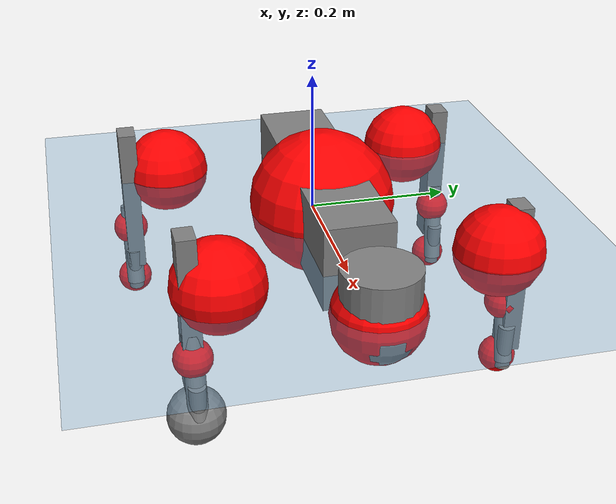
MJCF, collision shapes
<mujoco model="go2">
  <compiler angle="radian" assetdir="assets" balanceinertia="true" inertiafromgeom="false"/>

  <option timestep="0.005" density="1.2" viscosity="2e-05"/>

  <size nkey="1"/>

  <visual>
    <quality shadowsize="8192"/>
    <map shadowclip="0.5"/>
  </visual>

  <default>
    <default class="/">
      <geom contype="0" conaffinity="0" group="1" solref="-1000 -80"/>
      <site size="0.01 0.005 0.005" group="5"/>
      <general forcelimited="true" biastype="affine" gainprm="20" biasprm="0 -20 -0.5"/>
      <default class="go2">
        <joint armature="0.01" damping="0.01" frictionloss="0.2"/>
        <geom condim="1" margin="0.001"/>
        <default class="visual">
          <geom type="mesh" group="2"/>
        </default>
        <default class="collision">
          <geom group="3"/>
          <default class="foot">
            <geom size="0.022 0 0" condim="6" priority="1" friction="0.8 0.02 0.01" solimp="0.015 1 0.022"/>
          </default>
        </default>
        <default class="reward_collision_sphere">
          <geom group="5" rgba="1 0 0 1"/>
        </default>
      </default>
    </default>
  </default>

  <asset>
    <texture type="skybox" colorspace="auto" name="//unnamed_texture_0" builtin="gradient" rgb1="0.95 0.95 0.95" rgb2="0.95 0.95 0.95" width="100" height="600"/>
    <texture type="2d" colorspace="auto" name="texplane" builtin="checker" rgb1="0.345 0.575 0.748" rgb2="0.345 0.575 0.748" markrgb="1 1 1" width="512" height="512"/>
    <material name="MatPlane" class="/" texture="texplane" texuniform="true" texrepeat="2 2" specular="0.9"/>
    <material name="metal" class="/" rgba="0.9 0.95 0.95 1"/>
    <material name="black" class="/" rgba="0 0 0 1"/>
    <material name="white" class="/"/>
    <material name="gray" class="/" rgba="0.671705 0.692426 0.77427 1"/>
    <mesh name="base_0" class="/" file="base_0.obj"/>
    <mesh name="base_1" class="/" file="base_1.obj"/>
    <mesh name="base_2" class="/" file="base_2.obj"/>
    <mesh name="base_3" class="/" file="base_3.obj"/>
    <mesh name="base_4" class="/" file="base_4.obj"/>
    <mesh name="hip_0" class="/" file="hip_0.obj"/>
    <mesh name="hip_1" class="/" file="hip_1.obj"/>
    <mesh name="thigh_0" class="/" file="thigh_0.obj"/>
    <mesh name="thigh_1" class="/" file="thigh_1.obj"/>
    <mesh name="thigh_mirror_0" class="/" file="thigh_mirror_0.obj"/>
    <mesh name="thigh_mirror_1" class="/" file="thigh_mirror_1.obj"/>
    <mesh name="calf_0" class="/" file="calf_0.obj"/>
    <mesh name="calf_1" class="/" file="calf_1.obj"/>
    <mesh name="calf_mirror_0" class="/" file="calf_mirror_0.obj"/>
    <mesh name="calf_mirror_1" class="/" file="calf_mirror_1.obj"/>
    <mesh name="foot" class="/" file="foot.obj"/>
  </asset>

  <worldbody>
    <geom name="floor" class="/" size="100 100 0.125" type="plane" group="0" material="MatPlane"/>
    <light name="toplight_shadow" class="/" pos="0 0 5" dir="0.0990148 0.0990148 -0.990148" type="directional" ambient="0.04 0.04 0.04" diffuse="0.55 0.55 0.55" specular="0.12 0.12 0.12"/>
    <light name="toplight_fill" class="/" pos="0 0 5" dir="0.0990148 0.0990148 -0.990148" type="directional" castshadow="false" ambient="0.04 0.04 0.04" diffuse="0.3 0.3 0.3" specular="0.08 0.08 0.08"/>
    <body name="trunk" childclass="go2" pos="0.00346073 0.0135874 0.00905894" quat="0.999977 -0.000488138 0.00517592 0.00442103">
      <inertial pos="0.0337135 0.0185468 -0.0162899" quat="-0.0566425 0.717521 0.0201372 0.693938" mass="8.17035" diaginertia="0.177719 1.82607 0.000358307"/>
      <joint name="//unnamed_joint_0" type="free" armature="0" damping="0" frictionloss="0"/>
      <geom name="//unnamed_geom_1" class="visual" material="black" mesh="base_0"/>
      <geom name="//unnamed_geom_2" class="visual" material="black" mesh="base_1"/>
      <geom name="//unnamed_geom_3" class="visual" material="black" mesh="base_2"/>
      <geom name="//unnamed_geom_4" class="visual" material="white" mesh="base_3"/>
      <geom name="//unnamed_geom_5" class="visual" material="gray" mesh="base_4"/>
      <geom name="trunk_1" class="collision" size="0.198779 0.049404 0.0602359" type="box"/>
      <geom name="trunk_2" class="collision" size="0.0528385 0.0475547" pos="0.290391 0 0.00430655" type="cylinder"/>
      <geom name="trunk_3" class="collision" size="0.0496682" pos="0.298542 0 -0.0258393"/>
      <geom name="//unnamed_geom_9" class="reward_collision_sphere" size="0.105677"/>
      <geom name="//unnamed_geom_10" class="reward_collision_sphere" size="0.0634062" pos="0.285296 0 -0.0193795"/>
      <site name="imu" pos="0.00224907 -0.0238037 -0.00547608" size="0.0105677"/>
      <camera name="track" pos="0 -3.44148 0" quat="0.707107 0.707107 0 0" mode="trackcom"/>
      <camera name="ego_camera" pos="0.317901 0 0.0193795" quat="-0.5 -0.5 0.5 0.5"/>
      <body name="FL_hip" pos="0.191658 0.0779504 -0.00529202" quat="0.999998 0.00209202 0.000595471 0.000319815">
        <inertial pos="-0.00621364 0.0191269 -0.00313654" quat="0.525134 0.543097 0.507931 0.413867" mass="0.689754" diaginertia="0.000933822 0.0092723 6.80485e-06"/>
        <joint name="FL_hip_joint" pos="0 0 0" axis="0.998869 0.00456687 -0.0473329" range="-0.809963 1.18447" armature="0.0139213" damping="0" frictionloss="0.243626"/>
        <geom name="//unnamed_geom_11" class="visual" material="metal" mesh="hip_0"/>
        <geom name="//unnamed_geom_12" class="visual" material="gray" mesh="hip_1"/>
        <geom name="//unnamed_geom_13" class="collision" size="0.0486114 0.0211354" pos="0 0.137659 0" quat="0.707107 0.707107 0 0" type="cylinder"/>
        <geom name="//unnamed_geom_14" class="reward_collision_sphere" size="0.0634062" pos="0 0.120452 0"/>
        <body name="FL_thigh" pos="-0.0156106 0.152461 -0.00864774" quat="0.999955 -0.00648893 -0.00424103 -0.0054807">
          <inertial pos="-0.000230658 -0.0573929 -0.00714404" quat="0.840152 0.127557 -0.0106813 0.527029" mass="1.11357" diaginertia="0.00759468 0.0652381 1.26976e-05"/>
          <joint name="FL_thigh_joint" pos="0 0 0" axis="-0.00447602 0.997564 0.0696085" range="-1.29478 3.8417" armature="0.000376821" damping="0" frictionloss="0.34047"/>
          <geom name="//unnamed_geom_15" class="visual" material="metal" mesh="thigh_0"/>
          <geom name="//unnamed_geom_16" class="visual" material="gray" mesh="thigh_1"/>
          <geom name="//unnamed_geom_17" class="collision" size="0.112546 0.0129454 0.0179651" pos="0 0 -0.0458648" quat="0.707107 0 0.707107 0" type="box"/>
          <body name="FL_calf" pos="-0.00743464 -0.00747809 -0.0886616" quat="0.999997 -0.00011596 -0.00221073 -0.00117277">
            <inertial pos="0.0231786 0.0120025 -0.0454812" quat="0.718793 -0.0453602 -0.00608432 0.693716" mass="0.292108" diaginertia="0.00186587 0.020074 9.80888e-07"/>
            <joint name="FL_calf_joint" pos="0 0 0" axis="-0.0210621 0.999777 0.00175415" range="-3.10461 -1.14328" armature="0.0175757" damping="0.093583" frictionloss="0.112945"/>
            <geom name="//unnamed_geom_18" class="visual" material="gray" mesh="calf_0"/>
            <geom name="//unnamed_geom_19" class="visual" material="black" mesh="calf_1"/>
            <geom name="FL_calf0" class="collision" size="0.0126812 0.0634062" pos="0.00815132 0 -0.0258393" quat="0.994493 0 -0.104807 0" type="cylinder"/>
            <geom name="//unnamed_geom_21" class="collision" size="0.0116245 0.034345" pos="0.0203783 0 -0.063737" quat="0.999688 0 0.0249974 0" type="cylinder"/>
            <geom name="//unnamed_geom_22" class="visual" pos="0 0 -0.0917296" quat="1 0 0 0" material="black" mesh="foot"/>
            <geom name="FL_foot" class="foot" size="0.0233816" pos="-0.00203783 0 -0.0917296"/>
            <geom name="//unnamed_geom_24" class="reward_collision_sphere" size="0.0264193"/>
            <geom name="//unnamed_geom_25" class="reward_collision_sphere" size="0.0264193" pos="-0.00203783 0 -0.0917296"/>
            <site name="FL_foot" class="foot" pos="-0.00203783 0 -0.0917296" size="0.0105677"/>
          </body>
        </body>
      </body>
      <body name="FR_hip" pos="0.215926 -0.0690279 0.0116454" quat="0.999993 0.003124 -0.000376943 0.00225708">
        <inertial pos="0.000912076 -0.0135161 0.0106955" quat="0.522627 0.557289 0.442061 0.46997" mass="0.859441" diaginertia="0.00109019 0.00898205 5.97295e-06"/>
        <joint name="FR_hip_joint" pos="0 0 0" axis="0.998127 -0.0465233 0.0397143" stiffness="0.09675" range="-1.15899 0.722069" armature="0.01576" damping="0" frictionloss="0.119698"/>
        <geom name="//unnamed_geom_26" class="visual" pos="0 1.12387e-08 4.82051e-07" quat="4.63268e-05 1 0 0" material="metal" mesh="hip_0"/>
        <geom name="//unnamed_geom_27" class="visual" pos="0 1.82193e-08 -1.1923e-06" quat="4.63268e-05 1 0 0" material="gray" mesh="hip_1"/>
        <geom name="//unnamed_geom_28" class="collision" size="0.0486114 0.0211354" pos="0 -0.137659 0" quat="0.707107 0.707107 0 0" type="cylinder"/>
        <geom name="//unnamed_geom_29" class="reward_collision_sphere" size="0.0634062" pos="0 -0.120452 0"/>
        <body name="FR_thigh" pos="0.0103707 -0.160451 0.0167077" quat="1 -3.33293e-05 -0.000341959 0.000259394">
          <inertial pos="-0.0153438 0.0516235 -0.0315737" quat="0.514311 -0.0226971 0.107216 0.850573" mass="1.24029" diaginertia="0.00783408 0.0907397 1.34131e-05"/>
          <joint name="FR_thigh_joint" pos="0 0 0" axis="-0.0173318 -0.99966 -0.0194618" range="-3.41108 1.37909" armature="0.0186778" damping="0" frictionloss="0.348516"/>
          <geom name="//unnamed_geom_30" class="visual" material="metal" mesh="thigh_mirror_0"/>
          <geom name="//unnamed_geom_31" class="visual" material="gray" mesh="thigh_mirror_1"/>
          <geom name="//unnamed_geom_32" class="collision" size="0.112546 0.0129454 0.0179651" pos="0 0 -0.0458648" quat="0.707107 0 0.707107 0" type="box"/>
          <body name="FR_calf" pos="0.00758521 1.42572e-05 -0.108646" quat="0.999993 -0.00120261 0.00328754 -0.00153068">
            <inertial pos="0.0194345 -0.0123492 -0.0658961" quat="0.668763 -0.00170624 0.0239686 0.743088" mass="0.21594" diaginertia="0.00140802 0.0138952 6.97308e-07"/>
            <joint name="FR_calf_joint" pos="0 0 0" axis="-0.0178085 -0.999623 0.0208986" range="0.649232 2.55336" armature="0.0137215" damping="0.102824" frictionloss="0.315313"/>
            <geom name="//unnamed_geom_33" class="visual" material="gray" mesh="calf_mirror_0"/>
            <geom name="//unnamed_geom_34" class="visual" material="black" mesh="calf_mirror_1"/>
            <geom name="FR_calf0" class="collision" size="0.013738 0.0634062" pos="0.0101891 0 -0.0258393" quat="0.995004 0 -0.0998334 0" type="cylinder"/>
            <geom name="//unnamed_geom_36" class="collision" size="0.0116245 0.034345" pos="0.0203783 0 -0.063737" quat="0.999688 0 0.0249974 0" type="cylinder"/>
            <geom name="//unnamed_geom_37" class="visual" pos="0 0 -0.0917296" quat="1 0 0 0" material="black" mesh="foot"/>
            <geom name="FR_foot" class="foot" size="0.0396952" pos="-0.00203783 0 -0.0917296"/>
            <geom name="//unnamed_geom_39" class="reward_collision_sphere" size="0.0264193"/>
            <geom name="//unnamed_geom_40" class="reward_collision_sphere" size="0.0264193" pos="-0.00203783 0 -0.0917296"/>
            <site name="FR_foot" class="foot" pos="-0.00203783 0 -0.0917296" size="0.0105677"/>
          </body>
        </body>
      </body>
      <body name="RL_hip" pos="-0.19752 0.0685277 -0.0146921" quat="0.999998 -0.000697156 0.00104957 -0.00166606">
        <inertial pos="-0.00182833 0.0109917 -0.0129023" quat="0.501536 0.474719 0.528179 0.494095" mass="1.11829" diaginertia="0.00119417 0.0115854 6.77583e-06"/>
        <joint name="RL_hip_joint" pos="0 0 0" axis="-0.99864 0.005206 -0.0518735" range="-1.36903 1.23996" armature="0.0147446" damping="0.0257698" frictionloss="0.0536112"/>
        <geom name="//unnamed_geom_41" class="visual" pos="-5.12467e-09 0 -1.00455e-06" quat="4.63268e-05 0 1 0" material="metal" mesh="hip_0"/>
        <geom name="//unnamed_geom_42" class="visual" pos="-8.3077e-09 0 -8.90896e-07" quat="4.63268e-05 0 1 0" material="gray" mesh="hip_1"/>
        <geom name="//unnamed_geom_43" class="collision" size="0.0486114 0.0211354" pos="0 0.137659 0" quat="0.707107 0.707107 0 0" type="cylinder"/>
        <geom name="//unnamed_geom_44" class="reward_collision_sphere" size="0.0634062" pos="0 0.120452 0"/>
        <body name="RL_thigh" pos="0.000242597 0.175734 -0.00819974" quat="0.999961 -0.00722953 0.00193959 -0.00466251">
          <inertial pos="-0.00796049 -0.0581396 -0.0235826" quat="0.787965 0.113226 -0.0344209 0.604241" mass="1.70529" diaginertia="0.0076654 0.0759458 1.04904e-05"/>
          <joint name="RL_thigh_joint" pos="0 0 0" axis="0.0907816 0.995519 0.0264689" stiffness="0.0280021" range="-0.403062 4.62311" armature="0.00357557" damping="0" frictionloss="0.340846"/>
          <geom name="//unnamed_geom_45" class="visual" material="metal" mesh="thigh_0"/>
          <geom name="//unnamed_geom_46" class="visual" material="gray" mesh="thigh_1"/>
          <geom name="//unnamed_geom_47" class="collision" size="0.112546 0.0129454 0.0179651" pos="0 0 -0.0458648" quat="0.707107 0 0.707107 0" type="box"/>
          <body name="RL_calf" pos="0.0107509 0.00102518 -0.105768" quat="0.999982 -0.00283797 0.00458376 0.00257806">
            <inertial pos="0.00326259 -0.0168337 -0.0555756" quat="0.699913 0.0195839 0.00339112 0.713951" mass="0.289874" diaginertia="0.00176305 0.0238487 8.55737e-07"/>
            <joint name="RL_calf_joint" pos="0 0 0" axis="0.00621009 0.999943 0.00863626" range="-3.09546 -0.894189" armature="0.000502873" damping="0" frictionloss="0.351385"/>
            <geom name="//unnamed_geom_48" class="visual" material="gray" mesh="calf_0"/>
            <geom name="//unnamed_geom_49" class="visual" material="black" mesh="calf_1"/>
            <geom name="RL_calf0" class="collision" size="0.013738 0.0634062" pos="0.0101891 0 -0.0258393" quat="0.995004 0 -0.0998334 0" type="cylinder"/>
            <geom name="//unnamed_geom_51" class="collision" size="0.0116245 0.034345" pos="0.0203783 0 -0.063737" quat="0.999688 0 0.0249974 0" type="cylinder"/>
            <geom name="//unnamed_geom_52" class="visual" pos="0 0 -0.0917296" quat="1 0 0 0" material="black" mesh="foot"/>
            <geom name="RL_foot" class="foot" size="0.0212538" pos="-0.00203783 0 -0.0917296"/>
            <geom name="//unnamed_geom_54" class="reward_collision_sphere" size="0.0264193"/>
            <geom name="//unnamed_geom_55" class="reward_collision_sphere" size="0.0264193" pos="-0.00203783 0 -0.0917296"/>
            <site name="RL_foot" class="foot" pos="-0.00203783 0 -0.0917296" size="0.0105677"/>
          </body>
        </body>
      </body>
      <body name="RR_hip" pos="-0.178459 -0.083949 -0.00819063" quat="0.999952 0.00530984 0.00546052 -0.0061097">
        <inertial pos="0.00071911 0.00567352 0.00610942" quat="0.509503 0.488964 0.503255 0.498052" mass="0.934417" diaginertia="0.00109527 0.00912578 6.13025e-06"/>
        <joint name="RR_hip_joint" pos="0 0 0" axis="-0.999672 -0.0146045 0.0210574" range="-0.899037 0.772277" armature="0.00123463" damping="0.00910934" frictionloss="0.0751687"/>
        <geom name="//unnamed_geom_56" class="visual" pos="5.14897e-09 1.12387e-08 -1.4866e-06" quat="2.14617e-09 4.63268e-05 4.63268e-05 -1" material="metal" mesh="hip_0"/>
        <geom name="//unnamed_geom_57" class="visual" pos="8.24761e-09 1.82193e-08 3.01401e-07" quat="2.14617e-09 4.63268e-05 4.63268e-05 -1" material="gray" mesh="hip_1"/>
        <geom name="//unnamed_geom_58" class="collision" size="0.0486114 0.0211354" pos="0 -0.137659 0" quat="0.707107 0.707107 0 0" type="cylinder"/>
        <geom name="//unnamed_geom_59" class="reward_collision_sphere" size="0.0634062" pos="0 -0.120452 0"/>
        <body name="RR_thigh" pos="0.0138799 -0.179352 0.00934362" quat="0.999987 -0.00382448 0.00310588 -0.00155415">
          <inertial pos="-0.00656167 0.0530654 -0.00879703" quat="0.525179 -0.010699 0.0897177 0.846182" mass="1.08903" diaginertia="0.00632036 0.0881902 1.37059e-05"/>
          <joint name="RR_thigh_joint" pos="0 0 0" axis="0.00129339 -0.999989 -0.00439898" range="-4.62937 0.139467" armature="0.0205357" damping="0" frictionloss="0.265012"/>
          <geom name="//unnamed_geom_60" class="visual" material="metal" mesh="thigh_mirror_0"/>
          <geom name="//unnamed_geom_61" class="visual" material="gray" mesh="thigh_mirror_1"/>
          <geom name="//unnamed_geom_62" class="collision" size="0.112546 0.0129454 0.0179651" pos="0 0 -0.0458648" quat="0.707107 0 0.707107 0" type="box"/>
          <body name="RR_calf" pos="-0.012487 -0.00430033 -0.102454" quat="0.999996 -0.000550284 0.000623702 0.00267807">
            <inertial pos="0.018826 -0.0052577 -0.0591552" quat="0.699829 -0.00913931 0.00702467 0.714217" mass="0.231007" diaginertia="0.00142408 0.0184953 8.22431e-07"/>
            <joint name="RR_calf_joint" pos="0 0 0" axis="0.0740842 -0.997228 -0.00692416" range="0.503246 2.49586" armature="0.0145809" damping="0.0291441" frictionloss="0.0831586"/>
            <geom name="//unnamed_geom_63" class="visual" material="gray" mesh="calf_mirror_0"/>
            <geom name="//unnamed_geom_64" class="visual" material="black" mesh="calf_mirror_1"/>
            <geom name="RR_calf0" class="collision" size="0.013738 0.0634062" pos="0.0101891 0 -0.0258393" quat="0.995004 0 -0.0998334 0" type="cylinder"/>
            <geom name="//unnamed_geom_66" class="collision" size="0.0116245 0.034345" pos="0.0203783 0 -0.063737" quat="0.999688 0 0.0249974 0" type="cylinder"/>
            <geom name="//unnamed_geom_67" class="visual" pos="0 0 -0.0917296" quat="1 0 0 0" material="black" mesh="foot"/>
            <geom name="RR_foot" class="foot" size="0.00639906" pos="-0.00203783 0 -0.0917296"/>
            <geom name="//unnamed_geom_69" class="reward_collision_sphere" size="0.0264193"/>
            <geom name="//unnamed_geom_70" class="reward_collision_sphere" size="0.0264193" pos="-0.00203783 0 -0.0917296"/>
            <site name="RR_foot" class="foot" pos="-0.00203783 0 -0.0917296" size="0.0105677"/>
          </body>
        </body>
      </body>
    </body>
  </worldbody>

  <contact>
    <pair class="/" geom1="floor" geom2="FL_foot" name="//unnamed_contact_0"/>
    <pair class="/" geom1="floor" geom2="FR_foot" name="//unnamed_contact_1"/>
    <pair class="/" geom1="floor" geom2="RL_foot" name="//unnamed_contact_2"/>
    <pair class="/" geom1="floor" geom2="RR_foot" name="//unnamed_contact_3"/>
  </contact>

  <actuator>
    <general name="FL_hip" class="/" joint="FL_hip_joint" forcerange="-14.6205 14.6205" gainprm="20.8227" biasprm="0 -20.8227 -0.463023"/>
    <general name="FL_thigh" class="/" joint="FL_thigh_joint" forcerange="-27.3766 27.3766" gainprm="20.8227" biasprm="0 -20.8227 -0.463023"/>
    <general name="FL_calf" class="/" joint="FL_calf_joint" forcerange="-39.9269 39.9269" gainprm="20.8227" biasprm="0 -20.8227 -0.463023"/>
    <general name="FR_hip" class="/" joint="FR_hip_joint" forcerange="-36.0025 36.0025" gainprm="20.8227" biasprm="0 -20.8227 -0.463023"/>
    <general name="FR_thigh" class="/" joint="FR_thigh_joint" forcerange="-28.9953 28.9953" gainprm="20.8227" biasprm="0 -20.8227 -0.463023"/>
    <general name="FR_calf" class="/" joint="FR_calf_joint" forcerange="-74.0252 74.0252" gainprm="20.8227" biasprm="0 -20.8227 -0.463023"/>
    <general name="RL_hip" class="/" joint="RL_hip_joint" forcerange="-33.7748 33.7748" gainprm="20.8227" biasprm="0 -20.8227 -0.463023"/>
    <general name="RL_thigh" class="/" joint="RL_thigh_joint" forcerange="-28.8708 28.8708" gainprm="20.8227" biasprm="0 -20.8227 -0.463023"/>
    <general name="RL_calf" class="/" joint="RL_calf_joint" forcerange="-32.7145 32.7145" gainprm="20.8227" biasprm="0 -20.8227 -0.463023"/>
    <general name="RR_hip" class="/" joint="RR_hip_joint" forcerange="-35.6683 35.6683" gainprm="20.8227" biasprm="0 -20.8227 -0.463023"/>
    <general name="RR_thigh" class="/" joint="RR_thigh_joint" forcerange="-15.701 15.701" gainprm="20.8227" biasprm="0 -20.8227 -0.463023"/>
    <general name="RR_calf" class="/" joint="RR_calf_joint" forcerange="-17.4185 17.4185" gainprm="20.8227" biasprm="0 -20.8227 -0.463023"/>
  </actuator>

  <sensor>
    <gyro site="imu" name="imu_angular_velocity"/>
    <velocimeter site="imu" name="imu_linear_velocity"/>
    <framelinvel objtype="site" objname="FL_foot" name="FL_foot_global_linear_velocity"/>
    <framelinvel objtype="site" objname="FR_foot" name="FR_foot_global_linear_velocity"/>
    <framelinvel objtype="site" objname="RL_foot" name="RL_foot_global_linear_velocity"/>
    <framelinvel objtype="site" objname="RR_foot" name="RR_foot_global_linear_velocity"/>
  </sensor>

  <keyframe>
    <key name="home" qpos="0 0 0.325 1 0 0 0 0.1 0.8 -1.5 -0.1 -0.8 1.5 -0.1 0.8 -1.5 0.1 -0.8 1.5"/>
  </keyframe>
</mujoco>
